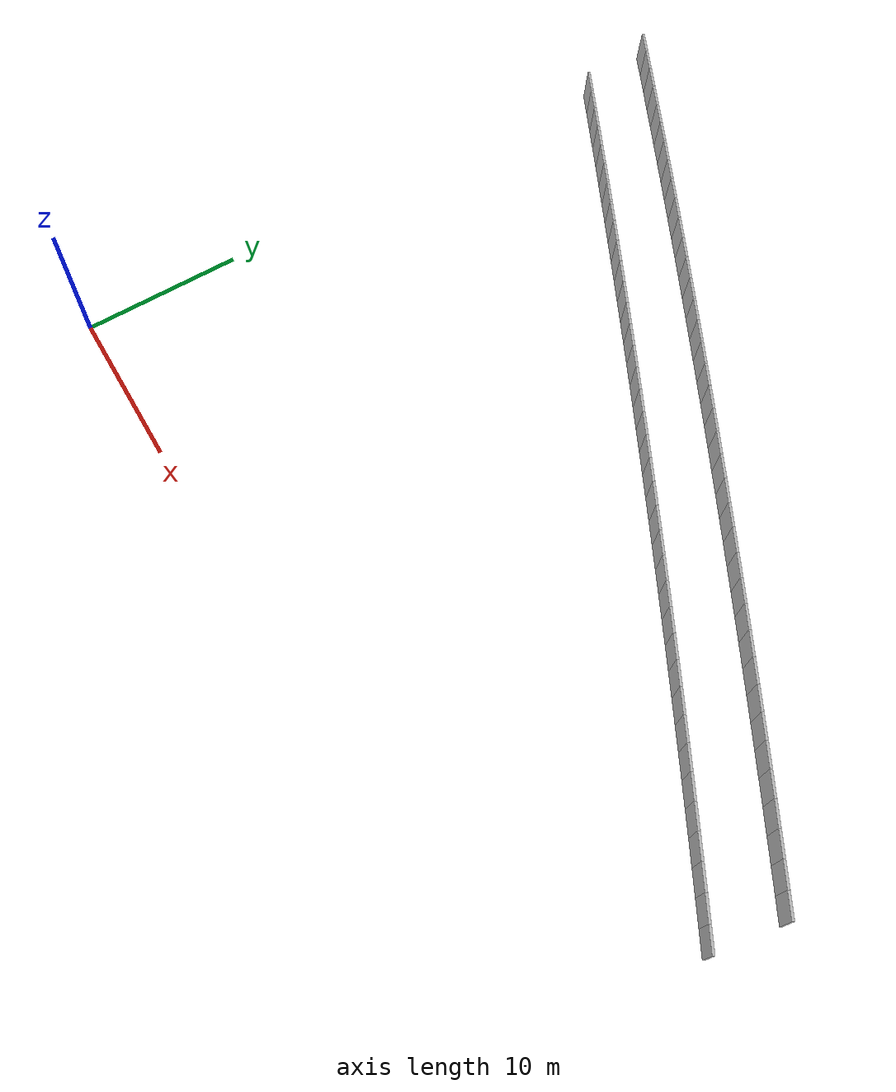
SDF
<?xml version="1.0" ?>
<sdf version="1.6">
  <model name="sps_3544">
    <pose frame="">0 0 0 0 -0 0</pose>
    <static>1</static>
    <self_collide>0</self_collide>
    <allow_auto_disable>0</allow_auto_disable>
    <link name="Wall10593">
      <kinematic>0</kinematic>
      <gravity>1</gravity>
      <self_collide>0</self_collide>
      <collision name="collision">
        <geometry>
          <box>
            <size>1.49658 0.15 2.5</size>
          </box>
        </geometry>
        <pose frame="">0 0 0 0 -0 0</pose>
      </collision>
      <visual name="visual">
        <geometry>
          <box>
            <size>1.49658 0.15 2.5</size>
          </box>
        </geometry>
        <pose frame="">0 0 0 0 -0 0</pose>
        <cast_shadows>1</cast_shadows>
        <transparency>0.0</transparency>
      </visual>
      <pose frame="">48.8934 11.6725 1.25 0 -0 2.63388</pose>
    </link>
    <link name="Wall10594">
      <kinematic>0</kinematic>
      <gravity>1</gravity>
      <self_collide>0</self_collide>
      <collision name="collision">
        <geometry>
          <box>
            <size>1.49649 0.15 2.5</size>
          </box>
        </geometry>
        <pose frame="">0 0 0 0 -0 0</pose>
      </collision>
      <visual name="visual">
        <geometry>
          <box>
            <size>1.49649 0.15 2.5</size>
          </box>
        </geometry>
        <pose frame="">0 0 0 0 -0 0</pose>
        <cast_shadows>1</cast_shadows>
        <transparency>0.0</transparency>
      </visual>
      <pose frame="">47.585 12.3989 1.25 0 -0 2.63567</pose>
    </link>
    <link name="Wall10595">
      <kinematic>0</kinematic>
      <gravity>1</gravity>
      <self_collide>0</self_collide>
      <collision name="collision">
        <geometry>
          <box>
            <size>1.49646 0.15 2.5</size>
          </box>
        </geometry>
        <pose frame="">0 0 0 0 -0 0</pose>
      </collision>
      <visual name="visual">
        <geometry>
          <box>
            <size>1.49646 0.15 2.5</size>
          </box>
        </geometry>
        <pose frame="">0 0 0 0 -0 0</pose>
        <cast_shadows>1</cast_shadows>
        <transparency>0.0</transparency>
      </visual>
      <pose frame="">46.2754 13.1232 1.25 0 -0 2.63706</pose>
    </link>
    <link name="Wall10596">
      <kinematic>0</kinematic>
      <gravity>1</gravity>
      <self_collide>0</self_collide>
      <collision name="collision">
        <geometry>
          <box>
            <size>1.49663 0.15 2.5</size>
          </box>
        </geometry>
        <pose frame="">0 0 0 0 -0 0</pose>
      </collision>
      <visual name="visual">
        <geometry>
          <box>
            <size>1.49663 0.15 2.5</size>
          </box>
        </geometry>
        <pose frame="">0 0 0 0 -0 0</pose>
        <cast_shadows>1</cast_shadows>
        <transparency>0.0</transparency>
      </visual>
      <pose frame="">44.9647 13.8455 1.25 0 -0 2.6388</pose>
    </link>
    <link name="Wall10597">
      <kinematic>0</kinematic>
      <gravity>1</gravity>
      <self_collide>0</self_collide>
      <collision name="collision">
        <geometry>
          <box>
            <size>1.49643 0.15 2.5</size>
          </box>
        </geometry>
        <pose frame="">0 0 0 0 -0 0</pose>
      </collision>
      <visual name="visual">
        <geometry>
          <box>
            <size>1.49643 0.15 2.5</size>
          </box>
        </geometry>
        <pose frame="">0 0 0 0 -0 0</pose>
        <cast_shadows>1</cast_shadows>
        <transparency>0.0</transparency>
      </visual>
      <pose frame="">43.6529 14.5656 1.25 0 -0 2.6404</pose>
    </link>
    <link name="Wall10598">
      <kinematic>0</kinematic>
      <gravity>1</gravity>
      <self_collide>0</self_collide>
      <collision name="collision">
        <geometry>
          <box>
            <size>1.49649 0.15 2.5</size>
          </box>
        </geometry>
        <pose frame="">0 0 0 0 -0 0</pose>
      </collision>
      <visual name="visual">
        <geometry>
          <box>
            <size>1.49649 0.15 2.5</size>
          </box>
        </geometry>
        <pose frame="">0 0 0 0 -0 0</pose>
        <cast_shadows>1</cast_shadows>
        <transparency>0.0</transparency>
      </visual>
      <pose frame="">42.34 15.2837 1.25 0 -0 2.64177</pose>
    </link>
    <link name="Wall10599">
      <kinematic>0</kinematic>
      <gravity>1</gravity>
      <self_collide>0</self_collide>
      <collision name="collision">
        <geometry>
          <box>
            <size>1.49655 0.15 2.5</size>
          </box>
        </geometry>
        <pose frame="">0 0 0 0 -0 0</pose>
      </collision>
      <visual name="visual">
        <geometry>
          <box>
            <size>1.49655 0.15 2.5</size>
          </box>
        </geometry>
        <pose frame="">0 0 0 0 -0 0</pose>
        <cast_shadows>1</cast_shadows>
        <transparency>0.0</transparency>
      </visual>
      <pose frame="">41.0258 15.9997 1.25 0 -0 2.64365</pose>
    </link>
    <link name="Wall10600">
      <kinematic>0</kinematic>
      <gravity>1</gravity>
      <self_collide>0</self_collide>
      <collision name="collision">
        <geometry>
          <box>
            <size>1.49656 0.15 2.5</size>
          </box>
        </geometry>
        <pose frame="">0 0 0 0 -0 0</pose>
      </collision>
      <visual name="visual">
        <geometry>
          <box>
            <size>1.49656 0.15 2.5</size>
          </box>
        </geometry>
        <pose frame="">0 0 0 0 -0 0</pose>
        <cast_shadows>1</cast_shadows>
        <transparency>0.0</transparency>
      </visual>
      <pose frame="">39.7105 16.7136 1.25 0 -0 2.645</pose>
    </link>
    <link name="Wall10601">
      <kinematic>0</kinematic>
      <gravity>1</gravity>
      <self_collide>0</self_collide>
      <collision name="collision">
        <geometry>
          <box>
            <size>1.49654 0.15 2.5</size>
          </box>
        </geometry>
        <pose frame="">0 0 0 0 -0 0</pose>
      </collision>
      <visual name="visual">
        <geometry>
          <box>
            <size>1.49654 0.15 2.5</size>
          </box>
        </geometry>
        <pose frame="">0 0 0 0 -0 0</pose>
        <cast_shadows>1</cast_shadows>
        <transparency>0.0</transparency>
      </visual>
      <pose frame="">38.3942 17.4255 1.25 0 -0 2.64666</pose>
    </link>
    <link name="Wall10602">
      <kinematic>0</kinematic>
      <gravity>1</gravity>
      <self_collide>0</self_collide>
      <collision name="collision">
        <geometry>
          <box>
            <size>1.49663 0.15 2.5</size>
          </box>
        </geometry>
        <pose frame="">0 0 0 0 -0 0</pose>
      </collision>
      <visual name="visual">
        <geometry>
          <box>
            <size>1.49663 0.15 2.5</size>
          </box>
        </geometry>
        <pose frame="">0 0 0 0 -0 0</pose>
        <cast_shadows>1</cast_shadows>
        <transparency>0.0</transparency>
      </visual>
      <pose frame="">37.0766 18.1352 1.25 0 -0 2.64836</pose>
    </link>
    <link name="Wall10603">
      <kinematic>0</kinematic>
      <gravity>1</gravity>
      <self_collide>0</self_collide>
      <collision name="collision">
        <geometry>
          <box>
            <size>1.49632 0.15 2.5</size>
          </box>
        </geometry>
        <pose frame="">0 0 0 0 -0 0</pose>
      </collision>
      <visual name="visual">
        <geometry>
          <box>
            <size>1.49632 0.15 2.5</size>
          </box>
        </geometry>
        <pose frame="">0 0 0 0 -0 0</pose>
        <cast_shadows>1</cast_shadows>
        <transparency>0.0</transparency>
      </visual>
      <pose frame="">35.758 18.8428 1.25 0 -0 2.64978</pose>
    </link>
    <link name="Wall10604">
      <kinematic>0</kinematic>
      <gravity>1</gravity>
      <self_collide>0</self_collide>
      <collision name="collision">
        <geometry>
          <box>
            <size>1.49655 0.15 2.5</size>
          </box>
        </geometry>
        <pose frame="">0 0 0 0 -0 0</pose>
      </collision>
      <visual name="visual">
        <geometry>
          <box>
            <size>1.49655 0.15 2.5</size>
          </box>
        </geometry>
        <pose frame="">0 0 0 0 -0 0</pose>
        <cast_shadows>1</cast_shadows>
        <transparency>0.0</transparency>
      </visual>
      <pose frame="">34.4383 19.5483 1.25 0 -0 2.65157</pose>
    </link>
    <link name="Wall10605">
      <kinematic>0</kinematic>
      <gravity>1</gravity>
      <self_collide>0</self_collide>
      <collision name="collision">
        <geometry>
          <box>
            <size>1.49652 0.15 2.5</size>
          </box>
        </geometry>
        <pose frame="">0 0 0 0 -0 0</pose>
      </collision>
      <visual name="visual">
        <geometry>
          <box>
            <size>1.49652 0.15 2.5</size>
          </box>
        </geometry>
        <pose frame="">0 0 0 0 -0 0</pose>
        <cast_shadows>1</cast_shadows>
        <transparency>0.0</transparency>
      </visual>
      <pose frame="">33.1173 20.2517 1.25 0 -0 2.65299</pose>
    </link>
    <link name="Wall10606">
      <kinematic>0</kinematic>
      <gravity>1</gravity>
      <self_collide>0</self_collide>
      <collision name="collision">
        <geometry>
          <box>
            <size>1.49641 0.15 2.5</size>
          </box>
        </geometry>
        <pose frame="">0 0 0 0 -0 0</pose>
      </collision>
      <visual name="visual">
        <geometry>
          <box>
            <size>1.49641 0.15 2.5</size>
          </box>
        </geometry>
        <pose frame="">0 0 0 0 -0 0</pose>
        <cast_shadows>1</cast_shadows>
        <transparency>0.0</transparency>
      </visual>
      <pose frame="">31.7954 20.9531 1.25 0 -0 2.65452</pose>
    </link>
    <link name="Wall10607">
      <kinematic>0</kinematic>
      <gravity>1</gravity>
      <self_collide>0</self_collide>
      <collision name="collision">
        <geometry>
          <box>
            <size>1.49662 0.15 2.5</size>
          </box>
        </geometry>
        <pose frame="">0 0 0 0 -0 0</pose>
      </collision>
      <visual name="visual">
        <geometry>
          <box>
            <size>1.49662 0.15 2.5</size>
          </box>
        </geometry>
        <pose frame="">0 0 0 0 -0 0</pose>
        <cast_shadows>1</cast_shadows>
        <transparency>0.0</transparency>
      </visual>
      <pose frame="">30.4723 21.6524 1.25 0 -0 2.65626</pose>
    </link>
    <link name="Wall10608">
      <kinematic>0</kinematic>
      <gravity>1</gravity>
      <self_collide>0</self_collide>
      <collision name="collision">
        <geometry>
          <box>
            <size>1.49646 0.15 2.5</size>
          </box>
        </geometry>
        <pose frame="">0 0 0 0 -0 0</pose>
      </collision>
      <visual name="visual">
        <geometry>
          <box>
            <size>1.49646 0.15 2.5</size>
          </box>
        </geometry>
        <pose frame="">0 0 0 0 -0 0</pose>
        <cast_shadows>1</cast_shadows>
        <transparency>0.0</transparency>
      </visual>
      <pose frame="">29.1481 22.3495 1.25 0 -0 2.65786</pose>
    </link>
    <link name="Wall10609">
      <kinematic>0</kinematic>
      <gravity>1</gravity>
      <self_collide>0</self_collide>
      <collision name="collision">
        <geometry>
          <box>
            <size>1.49656 0.15 2.5</size>
          </box>
        </geometry>
        <pose frame="">0 0 0 0 -0 0</pose>
      </collision>
      <visual name="visual">
        <geometry>
          <box>
            <size>1.49656 0.15 2.5</size>
          </box>
        </geometry>
        <pose frame="">0 0 0 0 -0 0</pose>
        <cast_shadows>1</cast_shadows>
        <transparency>0.0</transparency>
      </visual>
      <pose frame="">27.8228 23.0446 1.25 0 -0 2.65923</pose>
    </link>
    <link name="Wall10610">
      <kinematic>0</kinematic>
      <gravity>1</gravity>
      <self_collide>0</self_collide>
      <collision name="collision">
        <geometry>
          <box>
            <size>1.49654 0.15 2.5</size>
          </box>
        </geometry>
        <pose frame="">0 0 0 0 -0 0</pose>
      </collision>
      <visual name="visual">
        <geometry>
          <box>
            <size>1.49654 0.15 2.5</size>
          </box>
        </geometry>
        <pose frame="">0 0 0 0 -0 0</pose>
        <cast_shadows>1</cast_shadows>
        <transparency>0.0</transparency>
      </visual>
      <pose frame="">26.4964 23.7376 1.25 0 -0 2.66102</pose>
    </link>
    <link name="Wall10611">
      <kinematic>0</kinematic>
      <gravity>1</gravity>
      <self_collide>0</self_collide>
      <collision name="collision">
        <geometry>
          <box>
            <size>1.49645 0.15 2.5</size>
          </box>
        </geometry>
        <pose frame="">0 0 0 0 -0 0</pose>
      </collision>
      <visual name="visual">
        <geometry>
          <box>
            <size>1.49645 0.15 2.5</size>
          </box>
        </geometry>
        <pose frame="">0 0 0 0 -0 0</pose>
        <cast_shadows>1</cast_shadows>
        <transparency>0.0</transparency>
      </visual>
      <pose frame="">25.1688 24.4284 1.25 0 -0 2.66255</pose>
    </link>
    <link name="Wall10612">
      <kinematic>0</kinematic>
      <gravity>1</gravity>
      <self_collide>0</self_collide>
      <collision name="collision">
        <geometry>
          <box>
            <size>1.49658 0.15 2.5</size>
          </box>
        </geometry>
        <pose frame="">0 0 0 0 -0 0</pose>
      </collision>
      <visual name="visual">
        <geometry>
          <box>
            <size>1.49658 0.15 2.5</size>
          </box>
        </geometry>
        <pose frame="">0 0 0 0 -0 0</pose>
        <cast_shadows>1</cast_shadows>
        <transparency>0.0</transparency>
      </visual>
      <pose frame="">23.8403 25.1172 1.25 0 -0 2.66406</pose>
    </link>
    <link name="Wall10613">
      <kinematic>0</kinematic>
      <gravity>1</gravity>
      <self_collide>0</self_collide>
      <collision name="collision">
        <geometry>
          <box>
            <size>1.49633 0.15 2.5</size>
          </box>
        </geometry>
        <pose frame="">0 0 0 0 -0 0</pose>
      </collision>
      <visual name="visual">
        <geometry>
          <box>
            <size>1.49633 0.15 2.5</size>
          </box>
        </geometry>
        <pose frame="">0 0 0 0 -0 0</pose>
        <cast_shadows>1</cast_shadows>
        <transparency>0.0</transparency>
      </visual>
      <pose frame="">22.5107 25.8039 1.25 0 -0 2.66563</pose>
    </link>
    <link name="Wall10614">
      <kinematic>0</kinematic>
      <gravity>1</gravity>
      <self_collide>0</self_collide>
      <collision name="collision">
        <geometry>
          <box>
            <size>1.49666 0.15 2.5</size>
          </box>
        </geometry>
        <pose frame="">0 0 0 0 -0 0</pose>
      </collision>
      <visual name="visual">
        <geometry>
          <box>
            <size>1.49666 0.15 2.5</size>
          </box>
        </geometry>
        <pose frame="">0 0 0 0 -0 0</pose>
        <cast_shadows>1</cast_shadows>
        <transparency>0.0</transparency>
      </visual>
      <pose frame="">21.18 26.4885 1.25 0 -0 2.66726</pose>
    </link>
    <link name="Wall10615">
      <kinematic>0</kinematic>
      <gravity>1</gravity>
      <self_collide>0</self_collide>
      <collision name="collision">
        <geometry>
          <box>
            <size>1.49652 0.15 2.5</size>
          </box>
        </geometry>
        <pose frame="">0 0 0 0 -0 0</pose>
      </collision>
      <visual name="visual">
        <geometry>
          <box>
            <size>1.49652 0.15 2.5</size>
          </box>
        </geometry>
        <pose frame="">0 0 0 0 -0 0</pose>
        <cast_shadows>1</cast_shadows>
        <transparency>0.0</transparency>
      </visual>
      <pose frame="">19.848 27.171 1.25 0 -0 2.66886</pose>
    </link>
    <link name="Wall10616">
      <kinematic>0</kinematic>
      <gravity>1</gravity>
      <self_collide>0</self_collide>
      <collision name="collision">
        <geometry>
          <box>
            <size>1.49639 0.15 2.5</size>
          </box>
        </geometry>
        <pose frame="">0 0 0 0 -0 0</pose>
      </collision>
      <visual name="visual">
        <geometry>
          <box>
            <size>1.49639 0.15 2.5</size>
          </box>
        </geometry>
        <pose frame="">0 0 0 0 -0 0</pose>
        <cast_shadows>1</cast_shadows>
        <transparency>0.0</transparency>
      </visual>
      <pose frame="">18.5152 27.8513 1.25 0 -0 2.67047</pose>
    </link>
    <link name="Wall10617">
      <kinematic>0</kinematic>
      <gravity>1</gravity>
      <self_collide>0</self_collide>
      <collision name="collision">
        <geometry>
          <box>
            <size>1.4966 0.15 2.5</size>
          </box>
        </geometry>
        <pose frame="">0 0 0 0 -0 0</pose>
      </collision>
      <visual name="visual">
        <geometry>
          <box>
            <size>1.4966 0.15 2.5</size>
          </box>
        </geometry>
        <pose frame="">0 0 0 0 -0 0</pose>
        <cast_shadows>1</cast_shadows>
        <transparency>0.0</transparency>
      </visual>
      <pose frame="">17.1812 28.5295 1.25 0 -0 2.672</pose>
    </link>
    <link name="Wall10618">
      <kinematic>0</kinematic>
      <gravity>1</gravity>
      <self_collide>0</self_collide>
      <collision name="collision">
        <geometry>
          <box>
            <size>1.49659 0.15 2.5</size>
          </box>
        </geometry>
        <pose frame="">0 0 0 0 -0 0</pose>
      </collision>
      <visual name="visual">
        <geometry>
          <box>
            <size>1.49659 0.15 2.5</size>
          </box>
        </geometry>
        <pose frame="">0 0 0 0 -0 0</pose>
        <cast_shadows>1</cast_shadows>
        <transparency>0.0</transparency>
      </visual>
      <pose frame="">15.8461 29.2057 1.25 0 -0 2.67355</pose>
    </link>
    <link name="Wall10619">
      <kinematic>0</kinematic>
      <gravity>1</gravity>
      <self_collide>0</self_collide>
      <collision name="collision">
        <geometry>
          <box>
            <size>1.49639 0.15 2.5</size>
          </box>
        </geometry>
        <pose frame="">0 0 0 0 -0 0</pose>
      </collision>
      <visual name="visual">
        <geometry>
          <box>
            <size>1.49639 0.15 2.5</size>
          </box>
        </geometry>
        <pose frame="">0 0 0 0 -0 0</pose>
        <cast_shadows>1</cast_shadows>
        <transparency>0.0</transparency>
      </visual>
      <pose frame="">14.5099 29.8797 1.25 0 -0 2.67526</pose>
    </link>
    <link name="Wall10620">
      <kinematic>0</kinematic>
      <gravity>1</gravity>
      <self_collide>0</self_collide>
      <collision name="collision">
        <geometry>
          <box>
            <size>1.49655 0.15 2.5</size>
          </box>
        </geometry>
        <pose frame="">0 0 0 0 -0 0</pose>
      </collision>
      <visual name="visual">
        <geometry>
          <box>
            <size>1.49655 0.15 2.5</size>
          </box>
        </geometry>
        <pose frame="">0 0 0 0 -0 0</pose>
        <cast_shadows>1</cast_shadows>
        <transparency>0.0</transparency>
      </visual>
      <pose frame="">13.1728 30.5515 1.25 0 -0 2.67678</pose>
    </link>
    <link name="Wall10621">
      <kinematic>0</kinematic>
      <gravity>1</gravity>
      <self_collide>0</self_collide>
      <collision name="collision">
        <geometry>
          <box>
            <size>1.49654 0.15 2.5</size>
          </box>
        </geometry>
        <pose frame="">0 0 0 0 -0 0</pose>
      </collision>
      <visual name="visual">
        <geometry>
          <box>
            <size>1.49654 0.15 2.5</size>
          </box>
        </geometry>
        <pose frame="">0 0 0 0 -0 0</pose>
        <cast_shadows>1</cast_shadows>
        <transparency>0.0</transparency>
      </visual>
      <pose frame="">11.8345 31.2213 1.25 0 -0 2.67833</pose>
    </link>
    <link name="Wall10622">
      <kinematic>0</kinematic>
      <gravity>1</gravity>
      <self_collide>0</self_collide>
      <collision name="collision">
        <geometry>
          <box>
            <size>1.49668 0.15 2.5</size>
          </box>
        </geometry>
        <pose frame="">0 0 0 0 -0 0</pose>
      </collision>
      <visual name="visual">
        <geometry>
          <box>
            <size>1.49668 0.15 2.5</size>
          </box>
        </geometry>
        <pose frame="">0 0 0 0 -0 0</pose>
        <cast_shadows>1</cast_shadows>
        <transparency>0.0</transparency>
      </visual>
      <pose frame="">10.495 31.889 1.25 0 -0 2.67997</pose>
    </link>
    <link name="Wall10623">
      <kinematic>0</kinematic>
      <gravity>1</gravity>
      <self_collide>0</self_collide>
      <collision name="collision">
        <geometry>
          <box>
            <size>1.49634 0.15 2.5</size>
          </box>
        </geometry>
        <pose frame="">0 0 0 0 -0 0</pose>
      </collision>
      <visual name="visual">
        <geometry>
          <box>
            <size>1.49634 0.15 2.5</size>
          </box>
        </geometry>
        <pose frame="">0 0 0 0 -0 0</pose>
        <cast_shadows>1</cast_shadows>
        <transparency>0.0</transparency>
      </visual>
      <pose frame="">9.15465 32.5545 1.25 0 -0 2.68154</pose>
    </link>
    <link name="Wall10624">
      <kinematic>0</kinematic>
      <gravity>1</gravity>
      <self_collide>0</self_collide>
      <collision name="collision">
        <geometry>
          <box>
            <size>1.49654 0.15 2.5</size>
          </box>
        </geometry>
        <pose frame="">0 0 0 0 -0 0</pose>
      </collision>
      <visual name="visual">
        <geometry>
          <box>
            <size>1.49654 0.15 2.5</size>
          </box>
        </geometry>
        <pose frame="">0 0 0 0 -0 0</pose>
        <cast_shadows>1</cast_shadows>
        <transparency>0.0</transparency>
      </visual>
      <pose frame="">7.81325 33.2178 1.25 0 -0 2.6832</pose>
    </link>
    <link name="Wall10625">
      <kinematic>0</kinematic>
      <gravity>1</gravity>
      <self_collide>0</self_collide>
      <collision name="collision">
        <geometry>
          <box>
            <size>1.49647 0.15 2.5</size>
          </box>
        </geometry>
        <pose frame="">0 0 0 0 -0 0</pose>
      </collision>
      <visual name="visual">
        <geometry>
          <box>
            <size>1.49647 0.15 2.5</size>
          </box>
        </geometry>
        <pose frame="">0 0 0 0 -0 0</pose>
        <cast_shadows>1</cast_shadows>
        <transparency>0.0</transparency>
      </visual>
      <pose frame="">6.47076 33.879 1.25 0 -0 2.68468</pose>
    </link>
    <link name="Wall10626">
      <kinematic>0</kinematic>
      <gravity>1</gravity>
      <self_collide>0</self_collide>
      <collision name="collision">
        <geometry>
          <box>
            <size>1.49641 0.15 2.5</size>
          </box>
        </geometry>
        <pose frame="">0 0 0 0 -0 0</pose>
      </collision>
      <visual name="visual">
        <geometry>
          <box>
            <size>1.49641 0.15 2.5</size>
          </box>
        </geometry>
        <pose frame="">0 0 0 0 -0 0</pose>
        <cast_shadows>1</cast_shadows>
        <transparency>0.0</transparency>
      </visual>
      <pose frame="">5.12728 34.5381 1.25 0 -0 2.68634</pose>
    </link>
    <link name="Wall10627">
      <kinematic>0</kinematic>
      <gravity>1</gravity>
      <self_collide>0</self_collide>
      <collision name="collision">
        <geometry>
          <box>
            <size>1.49673 0.15 2.5</size>
          </box>
        </geometry>
        <pose frame="">0 0 0 0 -0 0</pose>
      </collision>
      <visual name="visual">
        <geometry>
          <box>
            <size>1.49673 0.15 2.5</size>
          </box>
        </geometry>
        <pose frame="">0 0 0 0 -0 0</pose>
        <cast_shadows>1</cast_shadows>
        <transparency>0.0</transparency>
      </visual>
      <pose frame="">3.78268 35.1952 1.25 0 -0 2.68776</pose>
    </link>
    <link name="Wall10628">
      <kinematic>0</kinematic>
      <gravity>1</gravity>
      <self_collide>0</self_collide>
      <collision name="collision">
        <geometry>
          <box>
            <size>1.4964 0.15 2.5</size>
          </box>
        </geometry>
        <pose frame="">0 0 0 0 -0 0</pose>
      </collision>
      <visual name="visual">
        <geometry>
          <box>
            <size>1.4964 0.15 2.5</size>
          </box>
        </geometry>
        <pose frame="">0 0 0 0 -0 0</pose>
        <cast_shadows>1</cast_shadows>
        <transparency>0.0</transparency>
      </visual>
      <pose frame="">2.43706 35.8502 1.25 0 -0 2.68942</pose>
    </link>
    <link name="Wall10629">
      <kinematic>0</kinematic>
      <gravity>1</gravity>
      <self_collide>0</self_collide>
      <collision name="collision">
        <geometry>
          <box>
            <size>1.49654 0.15 2.5</size>
          </box>
        </geometry>
        <pose frame="">0 0 0 0 -0 0</pose>
      </collision>
      <visual name="visual">
        <geometry>
          <box>
            <size>1.49654 0.15 2.5</size>
          </box>
        </geometry>
        <pose frame="">0 0 0 0 -0 0</pose>
        <cast_shadows>1</cast_shadows>
        <transparency>0.0</transparency>
      </visual>
      <pose frame="">1.09045 36.5029 1.25 0 -0 2.6911</pose>
    </link>
    <link name="Wall11191">
      <kinematic>0</kinematic>
      <gravity>1</gravity>
      <self_collide>0</self_collide>
      <collision name="collision">
        <geometry>
          <box>
            <size>1.503 0.15 2.5</size>
          </box>
        </geometry>
        <pose frame="">0 0 0 0 -0 0</pose>
      </collision>
      <visual name="visual">
        <geometry>
          <box>
            <size>1.503 0.15 2.5</size>
          </box>
        </geometry>
        <pose frame="">0 0 0 0 -0 0</pose>
        <cast_shadows>1</cast_shadows>
        <transparency>0.0</transparency>
      </visual>
      <pose frame="">49.5911 16.0204 1.25 0 -0 2.63547</pose>
    </link>
    <link name="Wall11192">
      <kinematic>0</kinematic>
      <gravity>1</gravity>
      <self_collide>0</self_collide>
      <collision name="collision">
        <geometry>
          <box>
            <size>1.50314 0.15 2.5</size>
          </box>
        </geometry>
        <pose frame="">0 0 0 0 -0 0</pose>
      </collision>
      <visual name="visual">
        <geometry>
          <box>
            <size>1.50314 0.15 2.5</size>
          </box>
        </geometry>
        <pose frame="">0 0 0 0 -0 0</pose>
        <cast_shadows>1</cast_shadows>
        <transparency>0.0</transparency>
      </visual>
      <pose frame="">48.2759 16.7479 1.25 0 -0 2.63724</pose>
    </link>
    <link name="Wall11193">
      <kinematic>0</kinematic>
      <gravity>1</gravity>
      <self_collide>0</self_collide>
      <collision name="collision">
        <geometry>
          <box>
            <size>1.50292 0.15 2.5</size>
          </box>
        </geometry>
        <pose frame="">0 0 0 0 -0 0</pose>
      </collision>
      <visual name="visual">
        <geometry>
          <box>
            <size>1.50292 0.15 2.5</size>
          </box>
        </geometry>
        <pose frame="">0 0 0 0 -0 0</pose>
        <cast_shadows>1</cast_shadows>
        <transparency>0.0</transparency>
      </visual>
      <pose frame="">46.9595 17.4733 1.25 0 -0 2.63869</pose>
    </link>
    <link name="Wall11194">
      <kinematic>0</kinematic>
      <gravity>1</gravity>
      <self_collide>0</self_collide>
      <collision name="collision">
        <geometry>
          <box>
            <size>1.50306 0.15 2.5</size>
          </box>
        </geometry>
        <pose frame="">0 0 0 0 -0 0</pose>
      </collision>
      <visual name="visual">
        <geometry>
          <box>
            <size>1.50306 0.15 2.5</size>
          </box>
        </geometry>
        <pose frame="">0 0 0 0 -0 0</pose>
        <cast_shadows>1</cast_shadows>
        <transparency>0.0</transparency>
      </visual>
      <pose frame="">45.642 18.1966 1.25 0 -0 2.64036</pose>
    </link>
    <link name="Wall11195">
      <kinematic>0</kinematic>
      <gravity>1</gravity>
      <self_collide>0</self_collide>
      <collision name="collision">
        <geometry>
          <box>
            <size>1.50289 0.15 2.5</size>
          </box>
        </geometry>
        <pose frame="">0 0 0 0 -0 0</pose>
      </collision>
      <visual name="visual">
        <geometry>
          <box>
            <size>1.50289 0.15 2.5</size>
          </box>
        </geometry>
        <pose frame="">0 0 0 0 -0 0</pose>
        <cast_shadows>1</cast_shadows>
        <transparency>0.0</transparency>
      </visual>
      <pose frame="">44.3233 18.9177 1.25 0 -0 2.64201</pose>
    </link>
    <link name="Wall11196">
      <kinematic>0</kinematic>
      <gravity>1</gravity>
      <self_collide>0</self_collide>
      <collision name="collision">
        <geometry>
          <box>
            <size>1.50328 0.15 2.5</size>
          </box>
        </geometry>
        <pose frame="">0 0 0 0 -0 0</pose>
      </collision>
      <visual name="visual">
        <geometry>
          <box>
            <size>1.50328 0.15 2.5</size>
          </box>
        </geometry>
        <pose frame="">0 0 0 0 -0 0</pose>
        <cast_shadows>1</cast_shadows>
        <transparency>0.0</transparency>
      </visual>
      <pose frame="">43.0033 19.6368 1.25 0 -0 2.64349</pose>
    </link>
    <link name="Wall11197">
      <kinematic>0</kinematic>
      <gravity>1</gravity>
      <self_collide>0</self_collide>
      <collision name="collision">
        <geometry>
          <box>
            <size>1.50309 0.15 2.5</size>
          </box>
        </geometry>
        <pose frame="">0 0 0 0 -0 0</pose>
      </collision>
      <visual name="visual">
        <geometry>
          <box>
            <size>1.50309 0.15 2.5</size>
          </box>
        </geometry>
        <pose frame="">0 0 0 0 -0 0</pose>
        <cast_shadows>1</cast_shadows>
        <transparency>0.0</transparency>
      </visual>
      <pose frame="">41.6822 20.3539 1.25 0 -0 2.64509</pose>
    </link>
    <link name="Wall11198">
      <kinematic>0</kinematic>
      <gravity>1</gravity>
      <self_collide>0</self_collide>
      <collision name="collision">
        <geometry>
          <box>
            <size>1.50323 0.15 2.5</size>
          </box>
        </geometry>
        <pose frame="">0 0 0 0 -0 0</pose>
      </collision>
      <visual name="visual">
        <geometry>
          <box>
            <size>1.50323 0.15 2.5</size>
          </box>
        </geometry>
        <pose frame="">0 0 0 0 -0 0</pose>
        <cast_shadows>1</cast_shadows>
        <transparency>0.0</transparency>
      </visual>
      <pose frame="">40.36 21.0689 1.25 0 -0 2.64662</pose>
    </link>
    <link name="Wall11199">
      <kinematic>0</kinematic>
      <gravity>1</gravity>
      <self_collide>0</self_collide>
      <collision name="collision">
        <geometry>
          <box>
            <size>1.50302 0.15 2.5</size>
          </box>
        </geometry>
        <pose frame="">0 0 0 0 -0 0</pose>
      </collision>
      <visual name="visual">
        <geometry>
          <box>
            <size>1.50302 0.15 2.5</size>
          </box>
        </geometry>
        <pose frame="">0 0 0 0 -0 0</pose>
        <cast_shadows>1</cast_shadows>
        <transparency>0.0</transparency>
      </visual>
      <pose frame="">39.0367 21.7818 1.25 0 -0 2.64825</pose>
    </link>
    <link name="Wall11200">
      <kinematic>0</kinematic>
      <gravity>1</gravity>
      <self_collide>0</self_collide>
      <collision name="collision">
        <geometry>
          <box>
            <size>1.50306 0.15 2.5</size>
          </box>
        </geometry>
        <pose frame="">0 0 0 0 -0 0</pose>
      </collision>
      <visual name="visual">
        <geometry>
          <box>
            <size>1.50306 0.15 2.5</size>
          </box>
        </geometry>
        <pose frame="">0 0 0 0 -0 0</pose>
        <cast_shadows>1</cast_shadows>
        <transparency>0.0</transparency>
      </visual>
      <pose frame="">37.7123 22.4925 1.25 0 -0 2.64992</pose>
    </link>
    <link name="Wall11201">
      <kinematic>0</kinematic>
      <gravity>1</gravity>
      <self_collide>0</self_collide>
      <collision name="collision">
        <geometry>
          <box>
            <size>1.50297 0.15 2.5</size>
          </box>
        </geometry>
        <pose frame="">0 0 0 0 -0 0</pose>
      </collision>
      <visual name="visual">
        <geometry>
          <box>
            <size>1.50297 0.15 2.5</size>
          </box>
        </geometry>
        <pose frame="">0 0 0 0 -0 0</pose>
        <cast_shadows>1</cast_shadows>
        <transparency>0.0</transparency>
      </visual>
      <pose frame="">36.3868 23.2011 1.25 0 -0 2.65141</pose>
    </link>
    <link name="Wall11202">
      <kinematic>0</kinematic>
      <gravity>1</gravity>
      <self_collide>0</self_collide>
      <collision name="collision">
        <geometry>
          <box>
            <size>1.50313 0.15 2.5</size>
          </box>
        </geometry>
        <pose frame="">0 0 0 0 -0 0</pose>
      </collision>
      <visual name="visual">
        <geometry>
          <box>
            <size>1.50313 0.15 2.5</size>
          </box>
        </geometry>
        <pose frame="">0 0 0 0 -0 0</pose>
        <cast_shadows>1</cast_shadows>
        <transparency>0.0</transparency>
      </visual>
      <pose frame="">35.0602 23.9077 1.25 0 -0 2.65294</pose>
    </link>
    <link name="Wall11203">
      <kinematic>0</kinematic>
      <gravity>1</gravity>
      <self_collide>0</self_collide>
      <collision name="collision">
        <geometry>
          <box>
            <size>1.50309 0.15 2.5</size>
          </box>
        </geometry>
        <pose frame="">0 0 0 0 -0 0</pose>
      </collision>
      <visual name="visual">
        <geometry>
          <box>
            <size>1.50309 0.15 2.5</size>
          </box>
        </geometry>
        <pose frame="">0 0 0 0 -0 0</pose>
        <cast_shadows>1</cast_shadows>
        <transparency>0.0</transparency>
      </visual>
      <pose frame="">33.7324 24.6122 1.25 0 -0 2.65463</pose>
    </link>
    <link name="Wall11204">
      <kinematic>0</kinematic>
      <gravity>1</gravity>
      <self_collide>0</self_collide>
      <collision name="collision">
        <geometry>
          <box>
            <size>1.50301 0.15 2.5</size>
          </box>
        </geometry>
        <pose frame="">0 0 0 0 -0 0</pose>
      </collision>
      <visual name="visual">
        <geometry>
          <box>
            <size>1.50301 0.15 2.5</size>
          </box>
        </geometry>
        <pose frame="">0 0 0 0 -0 0</pose>
        <cast_shadows>1</cast_shadows>
        <transparency>0.0</transparency>
      </visual>
      <pose frame="">32.4036 25.3145 1.25 0 -0 2.6562</pose>
    </link>
    <link name="Wall11205">
      <kinematic>0</kinematic>
      <gravity>1</gravity>
      <self_collide>0</self_collide>
      <collision name="collision">
        <geometry>
          <box>
            <size>1.50313 0.15 2.5</size>
          </box>
        </geometry>
        <pose frame="">0 0 0 0 -0 0</pose>
      </collision>
      <visual name="visual">
        <geometry>
          <box>
            <size>1.50313 0.15 2.5</size>
          </box>
        </geometry>
        <pose frame="">0 0 0 0 -0 0</pose>
        <cast_shadows>1</cast_shadows>
        <transparency>0.0</transparency>
      </visual>
      <pose frame="">31.0735 26.0147 1.25 0 -0 2.65781</pose>
    </link>
    <link name="Wall11206">
      <kinematic>0</kinematic>
      <gravity>1</gravity>
      <self_collide>0</self_collide>
      <collision name="collision">
        <geometry>
          <box>
            <size>1.50303 0.15 2.5</size>
          </box>
        </geometry>
        <pose frame="">0 0 0 0 -0 0</pose>
      </collision>
      <visual name="visual">
        <geometry>
          <box>
            <size>1.50303 0.15 2.5</size>
          </box>
        </geometry>
        <pose frame="">0 0 0 0 -0 0</pose>
        <cast_shadows>1</cast_shadows>
        <transparency>0.0</transparency>
      </visual>
      <pose frame="">29.7425 26.7129 1.25 0 -0 2.65924</pose>
    </link>
    <link name="Wall11207">
      <kinematic>0</kinematic>
      <gravity>1</gravity>
      <self_collide>0</self_collide>
      <collision name="collision">
        <geometry>
          <box>
            <size>1.50315 0.15 2.5</size>
          </box>
        </geometry>
        <pose frame="">0 0 0 0 -0 0</pose>
      </collision>
      <visual name="visual">
        <geometry>
          <box>
            <size>1.50315 0.15 2.5</size>
          </box>
        </geometry>
        <pose frame="">0 0 0 0 -0 0</pose>
        <cast_shadows>1</cast_shadows>
        <transparency>0.0</transparency>
      </visual>
      <pose frame="">28.4103 27.409 1.25 0 -0 2.66093</pose>
    </link>
    <link name="Wall11208">
      <kinematic>0</kinematic>
      <gravity>1</gravity>
      <self_collide>0</self_collide>
      <collision name="collision">
        <geometry>
          <box>
            <size>1.503 0.15 2.5</size>
          </box>
        </geometry>
        <pose frame="">0 0 0 0 -0 0</pose>
      </collision>
      <visual name="visual">
        <geometry>
          <box>
            <size>1.503 0.15 2.5</size>
          </box>
        </geometry>
        <pose frame="">0 0 0 0 -0 0</pose>
        <cast_shadows>1</cast_shadows>
        <transparency>0.0</transparency>
      </visual>
      <pose frame="">27.077 28.1029 1.25 0 -0 2.66253</pose>
    </link>
    <link name="Wall11209">
      <kinematic>0</kinematic>
      <gravity>1</gravity>
      <self_collide>0</self_collide>
      <collision name="collision">
        <geometry>
          <box>
            <size>1.50307 0.15 2.5</size>
          </box>
        </geometry>
        <pose frame="">0 0 0 0 -0 0</pose>
      </collision>
      <visual name="visual">
        <geometry>
          <box>
            <size>1.50307 0.15 2.5</size>
          </box>
        </geometry>
        <pose frame="">0 0 0 0 -0 0</pose>
        <cast_shadows>1</cast_shadows>
        <transparency>0.0</transparency>
      </visual>
      <pose frame="">25.7425 28.7946 1.25 0 -0 2.6642</pose>
    </link>
    <link name="Wall11210">
      <kinematic>0</kinematic>
      <gravity>1</gravity>
      <self_collide>0</self_collide>
      <collision name="collision">
        <geometry>
          <box>
            <size>1.50302 0.15 2.5</size>
          </box>
        </geometry>
        <pose frame="">0 0 0 0 -0 0</pose>
      </collision>
      <visual name="visual">
        <geometry>
          <box>
            <size>1.50302 0.15 2.5</size>
          </box>
        </geometry>
        <pose frame="">0 0 0 0 -0 0</pose>
        <cast_shadows>1</cast_shadows>
        <transparency>0.0</transparency>
      </visual>
      <pose frame="">24.407 29.4842 1.25 0 -0 2.66569</pose>
    </link>
    <link name="Wall11211">
      <kinematic>0</kinematic>
      <gravity>1</gravity>
      <self_collide>0</self_collide>
      <collision name="collision">
        <geometry>
          <box>
            <size>1.50313 0.15 2.5</size>
          </box>
        </geometry>
        <pose frame="">0 0 0 0 -0 0</pose>
      </collision>
      <visual name="visual">
        <geometry>
          <box>
            <size>1.50313 0.15 2.5</size>
          </box>
        </geometry>
        <pose frame="">0 0 0 0 -0 0</pose>
        <cast_shadows>1</cast_shadows>
        <transparency>0.0</transparency>
      </visual>
      <pose frame="">23.0705 30.1718 1.25 0 -0 2.66723</pose>
    </link>
    <link name="Wall11212">
      <kinematic>0</kinematic>
      <gravity>1</gravity>
      <self_collide>0</self_collide>
      <collision name="collision">
        <geometry>
          <box>
            <size>1.50305 0.15 2.5</size>
          </box>
        </geometry>
        <pose frame="">0 0 0 0 -0 0</pose>
      </collision>
      <visual name="visual">
        <geometry>
          <box>
            <size>1.50305 0.15 2.5</size>
          </box>
        </geometry>
        <pose frame="">0 0 0 0 -0 0</pose>
        <cast_shadows>1</cast_shadows>
        <transparency>0.0</transparency>
      </visual>
      <pose frame="">21.7328 30.8573 1.25 0 -0 2.66885</pose>
    </link>
    <link name="Wall11213">
      <kinematic>0</kinematic>
      <gravity>1</gravity>
      <self_collide>0</self_collide>
      <collision name="collision">
        <geometry>
          <box>
            <size>1.50314 0.15 2.5</size>
          </box>
        </geometry>
        <pose frame="">0 0 0 0 -0 0</pose>
      </collision>
      <visual name="visual">
        <geometry>
          <box>
            <size>1.50314 0.15 2.5</size>
          </box>
        </geometry>
        <pose frame="">0 0 0 0 -0 0</pose>
        <cast_shadows>1</cast_shadows>
        <transparency>0.0</transparency>
      </visual>
      <pose frame="">20.394 31.5406 1.25 0 -0 2.67052</pose>
    </link>
    <link name="Wall11214">
      <kinematic>0</kinematic>
      <gravity>1</gravity>
      <self_collide>0</self_collide>
      <collision name="collision">
        <geometry>
          <box>
            <size>1.50288 0.15 2.5</size>
          </box>
        </geometry>
        <pose frame="">0 0 0 0 -0 0</pose>
      </collision>
      <visual name="visual">
        <geometry>
          <box>
            <size>1.50288 0.15 2.5</size>
          </box>
        </geometry>
        <pose frame="">0 0 0 0 -0 0</pose>
        <cast_shadows>1</cast_shadows>
        <transparency>0.0</transparency>
      </visual>
      <pose frame="">19.0542 32.2217 1.25 0 -0 2.67202</pose>
    </link>
    <link name="Wall11215">
      <kinematic>0</kinematic>
      <gravity>1</gravity>
      <self_collide>0</self_collide>
      <collision name="collision">
        <geometry>
          <box>
            <size>1.50319 0.15 2.5</size>
          </box>
        </geometry>
        <pose frame="">0 0 0 0 -0 0</pose>
      </collision>
      <visual name="visual">
        <geometry>
          <box>
            <size>1.50319 0.15 2.5</size>
          </box>
        </geometry>
        <pose frame="">0 0 0 0 -0 0</pose>
        <cast_shadows>1</cast_shadows>
        <transparency>0.0</transparency>
      </visual>
      <pose frame="">17.7132 32.9007 1.25 0 -0 2.67368</pose>
    </link>
    <link name="Wall11216">
      <kinematic>0</kinematic>
      <gravity>1</gravity>
      <self_collide>0</self_collide>
      <collision name="collision">
        <geometry>
          <box>
            <size>1.50299 0.15 2.5</size>
          </box>
        </geometry>
        <pose frame="">0 0 0 0 -0 0</pose>
      </collision>
      <visual name="visual">
        <geometry>
          <box>
            <size>1.50299 0.15 2.5</size>
          </box>
        </geometry>
        <pose frame="">0 0 0 0 -0 0</pose>
        <cast_shadows>1</cast_shadows>
        <transparency>0.0</transparency>
      </visual>
      <pose frame="">16.3712 33.5777 1.25 0 -0 2.67511</pose>
    </link>
    <link name="Wall11217">
      <kinematic>0</kinematic>
      <gravity>1</gravity>
      <self_collide>0</self_collide>
      <collision name="collision">
        <geometry>
          <box>
            <size>1.50307 0.15 2.5</size>
          </box>
        </geometry>
        <pose frame="">0 0 0 0 -0 0</pose>
      </collision>
      <visual name="visual">
        <geometry>
          <box>
            <size>1.50307 0.15 2.5</size>
          </box>
        </geometry>
        <pose frame="">0 0 0 0 -0 0</pose>
        <cast_shadows>1</cast_shadows>
        <transparency>0.0</transparency>
      </visual>
      <pose frame="">15.0283 34.2526 1.25 0 -0 2.67673</pose>
    </link>
    <link name="Wall11218">
      <kinematic>0</kinematic>
      <gravity>1</gravity>
      <self_collide>0</self_collide>
      <collision name="collision">
        <geometry>
          <box>
            <size>1.50318 0.15 2.5</size>
          </box>
        </geometry>
        <pose frame="">0 0 0 0 -0 0</pose>
      </collision>
      <visual name="visual">
        <geometry>
          <box>
            <size>1.50318 0.15 2.5</size>
          </box>
        </geometry>
        <pose frame="">0 0 0 0 -0 0</pose>
        <cast_shadows>1</cast_shadows>
        <transparency>0.0</transparency>
      </visual>
      <pose frame="">13.6841 34.9253 1.25 0 -0 2.6784</pose>
    </link>
    <link name="Wall11219">
      <kinematic>0</kinematic>
      <gravity>1</gravity>
      <self_collide>0</self_collide>
      <collision name="collision">
        <geometry>
          <box>
            <size>1.50293 0.15 2.5</size>
          </box>
        </geometry>
        <pose frame="">0 0 0 0 -0 0</pose>
      </collision>
      <visual name="visual">
        <geometry>
          <box>
            <size>1.50293 0.15 2.5</size>
          </box>
        </geometry>
        <pose frame="">0 0 0 0 -0 0</pose>
        <cast_shadows>1</cast_shadows>
        <transparency>0.0</transparency>
      </visual>
      <pose frame="">12.3389 35.5958 1.25 0 -0 2.68</pose>
    </link>
    <link name="Wall11220">
      <kinematic>0</kinematic>
      <gravity>1</gravity>
      <self_collide>0</self_collide>
      <collision name="collision">
        <geometry>
          <box>
            <size>1.5031 0.15 2.5</size>
          </box>
        </geometry>
        <pose frame="">0 0 0 0 -0 0</pose>
      </collision>
      <visual name="visual">
        <geometry>
          <box>
            <size>1.5031 0.15 2.5</size>
          </box>
        </geometry>
        <pose frame="">0 0 0 0 -0 0</pose>
        <cast_shadows>1</cast_shadows>
        <transparency>0.0</transparency>
      </visual>
      <pose frame="">10.9926 36.2642 1.25 0 -0 2.6815</pose>
    </link>
    <link name="Wall11221">
      <kinematic>0</kinematic>
      <gravity>1</gravity>
      <self_collide>0</self_collide>
      <collision name="collision">
        <geometry>
          <box>
            <size>1.50314 0.15 2.5</size>
          </box>
        </geometry>
        <pose frame="">0 0 0 0 -0 0</pose>
      </collision>
      <visual name="visual">
        <geometry>
          <box>
            <size>1.50314 0.15 2.5</size>
          </box>
        </geometry>
        <pose frame="">0 0 0 0 -0 0</pose>
        <cast_shadows>1</cast_shadows>
        <transparency>0.0</transparency>
      </visual>
      <pose frame="">9.64526 36.9305 1.25 0 -0 2.68319</pose>
    </link>
    <link name="Wall11222">
      <kinematic>0</kinematic>
      <gravity>1</gravity>
      <self_collide>0</self_collide>
      <collision name="collision">
        <geometry>
          <box>
            <size>1.50305 0.15 2.5</size>
          </box>
        </geometry>
        <pose frame="">0 0 0 0 -0 0</pose>
      </collision>
      <visual name="visual">
        <geometry>
          <box>
            <size>1.50305 0.15 2.5</size>
          </box>
        </geometry>
        <pose frame="">0 0 0 0 -0 0</pose>
        <cast_shadows>1</cast_shadows>
        <transparency>0.0</transparency>
      </visual>
      <pose frame="">8.29687 37.5947 1.25 0 -0 2.68461</pose>
    </link>
    <link name="Wall11223">
      <kinematic>0</kinematic>
      <gravity>1</gravity>
      <self_collide>0</self_collide>
      <collision name="collision">
        <geometry>
          <box>
            <size>1.50304 0.15 2.5</size>
          </box>
        </geometry>
        <pose frame="">0 0 0 0 -0 0</pose>
      </collision>
      <visual name="visual">
        <geometry>
          <box>
            <size>1.50304 0.15 2.5</size>
          </box>
        </geometry>
        <pose frame="">0 0 0 0 -0 0</pose>
        <cast_shadows>1</cast_shadows>
        <transparency>0.0</transparency>
      </visual>
      <pose frame="">6.94747 38.2567 1.25 0 -0 2.68637</pose>
    </link>
    <link name="Wall11224">
      <kinematic>0</kinematic>
      <gravity>1</gravity>
      <self_collide>0</self_collide>
      <collision name="collision">
        <geometry>
          <box>
            <size>1.50306 0.15 2.5</size>
          </box>
        </geometry>
        <pose frame="">0 0 0 0 -0 0</pose>
      </collision>
      <visual name="visual">
        <geometry>
          <box>
            <size>1.50306 0.15 2.5</size>
          </box>
        </geometry>
        <pose frame="">0 0 0 0 -0 0</pose>
        <cast_shadows>1</cast_shadows>
        <transparency>0.0</transparency>
      </visual>
      <pose frame="">5.59698 38.9165 1.25 0 -0 2.68792</pose>
    </link>
    <link name="Wall11225">
      <kinematic>0</kinematic>
      <gravity>1</gravity>
      <self_collide>0</self_collide>
      <collision name="collision">
        <geometry>
          <box>
            <size>1.503 0.15 2.5</size>
          </box>
        </geometry>
        <pose frame="">0 0 0 0 -0 0</pose>
      </collision>
      <visual name="visual">
        <geometry>
          <box>
            <size>1.503 0.15 2.5</size>
          </box>
        </geometry>
        <pose frame="">0 0 0 0 -0 0</pose>
        <cast_shadows>1</cast_shadows>
        <transparency>0.0</transparency>
      </visual>
      <pose frame="">4.24548 39.5742 1.25 0 -0 2.68948</pose>
    </link>
    <link name="Wall11226">
      <kinematic>0</kinematic>
      <gravity>1</gravity>
      <self_collide>0</self_collide>
      <collision name="collision">
        <geometry>
          <box>
            <size>1.50306 0.15 2.5</size>
          </box>
        </geometry>
        <pose frame="">0 0 0 0 -0 0</pose>
      </collision>
      <visual name="visual">
        <geometry>
          <box>
            <size>1.50306 0.15 2.5</size>
          </box>
        </geometry>
        <pose frame="">0 0 0 0 -0 0</pose>
        <cast_shadows>1</cast_shadows>
        <transparency>0.0</transparency>
      </visual>
      <pose frame="">2.89297 40.2298 1.25 0 -0 2.69098</pose>
    </link>
    <link name="Wall11227">
      <kinematic>0</kinematic>
      <gravity>1</gravity>
      <self_collide>0</self_collide>
      <collision name="collision">
        <geometry>
          <box>
            <size>1.50323 0.15 2.5</size>
          </box>
        </geometry>
        <pose frame="">0 0 0 0 -0 0</pose>
      </collision>
      <visual name="visual">
        <geometry>
          <box>
            <size>1.50323 0.15 2.5</size>
          </box>
        </geometry>
        <pose frame="">0 0 0 0 -0 0</pose>
        <cast_shadows>1</cast_shadows>
        <transparency>0.0</transparency>
      </visual>
      <pose frame="">1.53936 40.8834 1.25 0 -0 2.69253</pose>
    </link>
    <link name="Wall11228">
      <kinematic>0</kinematic>
      <gravity>1</gravity>
      <self_collide>0</self_collide>
      <collision name="collision">
        <geometry>
          <box>
            <size>1.50291 0.15 2.5</size>
          </box>
        </geometry>
        <pose frame="">0 0 0 0 -0 0</pose>
      </collision>
      <visual name="visual">
        <geometry>
          <box>
            <size>1.50291 0.15 2.5</size>
          </box>
        </geometry>
        <pose frame="">0 0 0 0 -0 0</pose>
        <cast_shadows>1</cast_shadows>
        <transparency>0.0</transparency>
      </visual>
      <pose frame="">0.184776 41.5348 1.25 0 -0 2.69418</pose>
    </link>
  </model>
</sdf>
